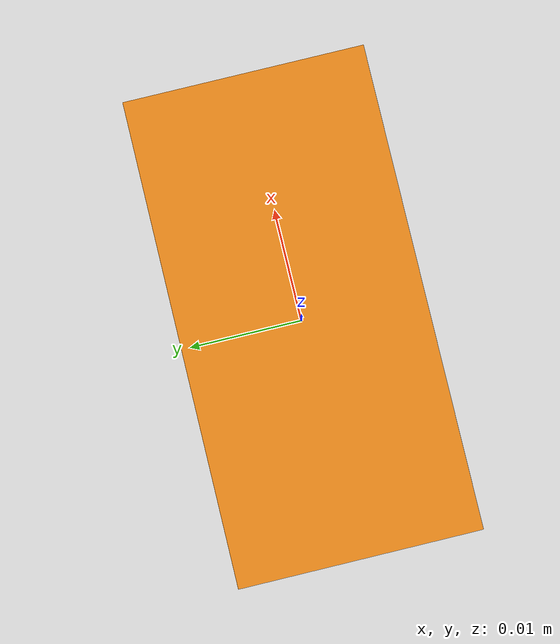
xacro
<?xml version="1.0"?>
<robot xmlns:xacro="http://www.ros.org/wiki/xacro" name="block_laser">
	<xacro:property name="cameralen" value="0.04" />
	<xacro:property name="camerawid" value="0.02" />
	<xacro:property name="camerahgt" value="0.02" />
	<xacro:property name="cameramass" value="0.05" />
	<xacro:property name="duo_width" value="0.06" />

	<xacro:include filename="duo_cam.materials" />

	<link name="base_link">
	</link>

	<xacro:macro name="camera_geometry">
		<geometry>
			<box size="${cameralen} ${camerawid} ${camerahgt}" />
		</geometry>
	</xacro:macro>

	<link name="block_laser">
		<inertial>
			<mass value="${cameramass}" />
			<inertia
				ixx="${cameramass * ((camerahgt*camerahgt)+(cameralen*cameralen)) / 12}"
				iyy="${cameramass * ((camerahgt*camerahgt)+(camerawid*camerawid)) / 12}"
				izz="${cameramass * ((cameralen*cameralen)+(camerawid*camerawid)) / 12}"
				ixy="0"
				ixz="0"
				iyz="0"
			/>
		</inertial>
		<visual>
			<xacro:camera_geometry />
			<material name="orange" />
		</visual>
		<collision>
			<xacro:camera_geometry />
		</collision>
	</link>
	<joint name="block_laser_joint" type="fixed">
		<origin xyz="0 0 0" />
		<parent link="base_link" />
		<child link="block_laser" />
	</joint>

	<xacro:include filename="block_laser.gazebo" />
</robot>
